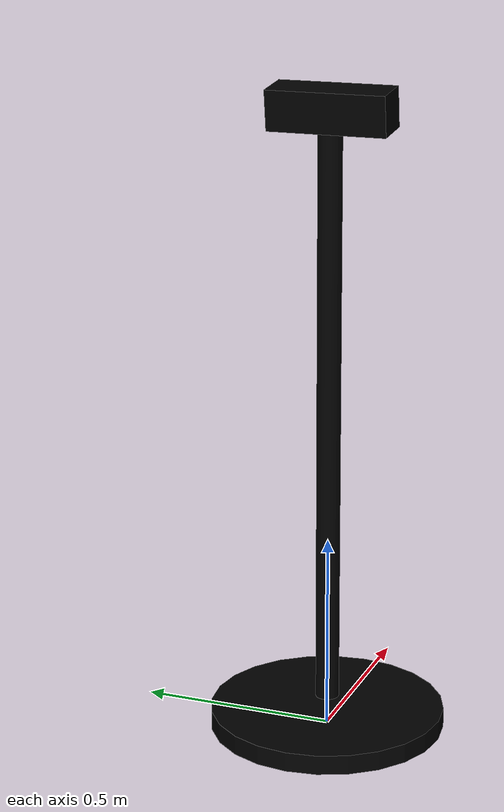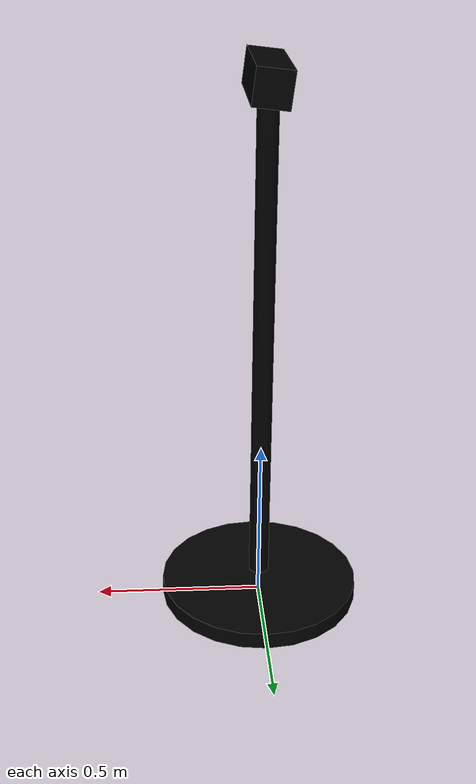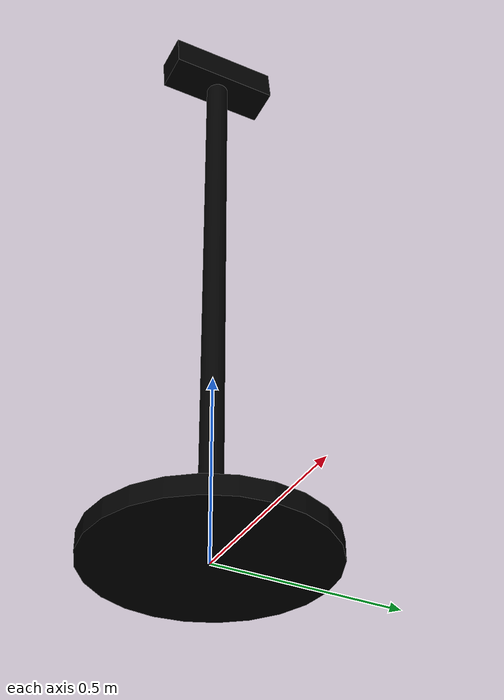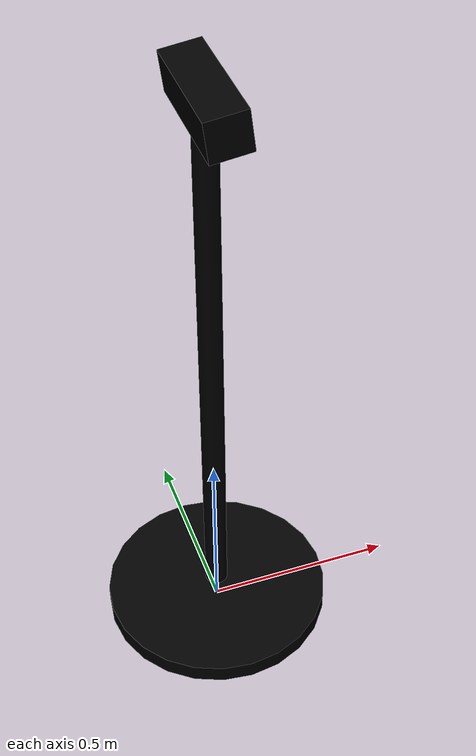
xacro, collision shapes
<?xml version="1.0" ?>

<robot name="kinect_stand" xmlns:xacro="http://www.ros.org/wiki/xacro">
    <xacro:property name="PI" value="3.1415926535897931"/>
    <xacro:arg name="gazebo" default="false"/>

    <!-- Stand URDF -->
    <xacro:include filename="$(find kinect_description)/urdf/stand/stand.urdf.xacro">
        <xacro:arg name="gazebo" value="${gazebo}"/>
    </xacro:include>

    <!-- Kinect URDF -->
    <xacro:include filename="$(find kinect_description)/urdf/kinect/kinect.xacro">
        <xacro:arg name="gazebo" value="${gazebo}"/>
    </xacro:include>
    <xacro:sensor_kinect prefix="/"
                         name="kinect"
                         parent="sensor_link"
                         cam_px="0.0"
                         cam_py="0.015"
                         cam_pz="0.0"
                         cam_or="0.0"
                         cam_op="${7*PI/180}"
                         cam_oy="0.0"/>

</robot>

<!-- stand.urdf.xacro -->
<robot name="stand" xmlns:xacro="http://www.ros.org/wiki/xacro">
    <xacro:arg name="gazebo" default="false"/>
    <xacro:if value="$(arg gazebo)">
        <!-- Gazebo Tags -->
        <xacro:include filename="$(find kinect_description)/urdf/stand/stand.gazebo.xacro"/>
    </xacro:if>
    <xacro:include filename="$(find kinect_description)/urdf/stand/properties.xacro"/>
    <xacro:include filename="$(find kinect_description)/urdf/stand/materials.xacro"/>
    <xacro:include filename="$(find kinect_description)/urdf/stand/macros.xacro"/>

    <link name="footprint"/>

    <joint name="base_joint" type="fixed">
        <parent link="footprint"/>
        <child link="foot"/>
    </joint>

    <link name="foot">
        <visual>
            <origin xyz="0 0 ${footHeight/2}" rpy="0 0 0"/>
            <geometry>
                <cylinder length="${footHeight}" radius="${footRadius}"/>
            </geometry>
            <material name="black"/>
        </visual>
        <collision>
            <origin xyz="0 0 ${footHeight/2}" rpy="0 0 0"/>
            <geometry>
                <cylinder length="${footHeight}" radius="${footRadius}"/>
            </geometry>
            <contact_coefficients mu="0" kp="1000.0" kd="1.0"/>
        </collision>
        <inertial>
            <mass value="${footMass}"/>
            <cylinder_inertia m="${footMass}"
                              r="${footRadius}" h="${footHeight}"/>
        </inertial>
    </link>

    <joint name="foot_joint" type="fixed">
        <parent link="foot"/>
        <child link="stand"/>
        <origin xyz="0 0 ${footHeight}" rpy="0 0 0"/>
    </joint>

    <link name="stand">
        <visual>
            <origin xyz="0 0 ${standHeight/2}" rpy="0 0 0"/>
            <geometry>
                <cylinder length="${standHeight}" radius="${standRadius}"/>
            </geometry>
            <material name="black"/>
        </visual>
        <collision>
            <origin xyz="0 0 ${footHeight/2+standHeight/2}" rpy="0 0 0"/>
            <geometry>
                <cylinder length="${standHeight}" radius="${standRadius}"/>
            </geometry>
            <contact_coefficients mu="0" kp="1000.0" kd="1.0"/>
        </collision>
        <inertial>
            <mass value="${standMass}"/>
            <cylinder_inertia m="${standMass}"
                              r="${standRadius}" h="${standHeight}"/>
        </inertial>
    </link>

    <joint name="sensor_joint" type="fixed">
        <parent link="stand"/>
        <child link="sensor_link"/>
        <origin xyz="0 0 ${footHeight+standHeight}" rpy="0 0 ${PI}"/>
    </joint>

    <link name="sensor_link"/>
</robot>

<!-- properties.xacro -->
<robot name="mybot" xmlns:xacro="http://www.ros.org/wiki/xacro">
    <xacro:property name="PI" value="3.1415926535897931"/>

    <xacro:property name="footRadius" value="0.3"/>
    <xacro:property name="footHeight" value="0.05"/>
    <xacro:property name="footMass" value="5.0"/>

    <xacro:property name="standRadius" value="0.03"/>
    <xacro:property name="standHeight" value="1.5"/>
    <xacro:property name="standMass" value="0.5"/>
</robot>

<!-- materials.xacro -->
<robot name="mybot" xmlns:xacro="http://www.ros.org/wiki/xacro">
    <material name="black">
        <color rgba="0.0 0.0 0.0 1.0"/>
    </material>
</robot>

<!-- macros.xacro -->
<robot name="mybot" xmlns:xacro="http://www.ros.org/wiki/xacro">
    <macro name="cylinder_inertia" params="m r h">
        <inertia  ixx="${m*(3*r*r+h*h)/12}" ixy = "0" ixz = "0"
                  iyy="${m*(3*r*r+h*h)/12}" iyz = "0"
                  izz="${m*r*r/2}"
        />
    </macro>
</robot>

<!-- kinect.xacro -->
<robot name="kinect_sensor" xmlns:xacro="http://www.ros.org/wiki/xacro">
    <xacro:macro name="sensor_kinect" params="prefix name parent cam_px cam_py cam_pz cam_or cam_op cam_oy">
        <!-- Kinect sensor URDF part, cf. https://github.com/turtlebot/turtlebot
        and there turtlebot_description/urdf/sensors/kinect.xacro -->
        <joint name="${name}_rgb_joint" type="fixed">
            <parent link="${parent}"/>
            <child link="${name}_rgb_frame"/>
            <origin xyz="${cam_px} ${cam_py} ${cam_pz}" rpy="${cam_or} ${cam_op} ${cam_oy}"/>
        </joint>

        <link name="${name}_rgb_frame"/>

        <joint name="${name}_rgb_optical_joint" type="fixed">
            <parent link="${name}_rgb_frame"/>
            <child link="${name}_rgb_optical_frame"/>
            <origin xyz="0 0 0" rpy="-1.57 0 -1.57"/>
        </joint>

        <link name="${name}_rgb_optical_frame"/>

        <joint name="${name}_joint" type="fixed">
            <parent link="${name}_rgb_frame"/>
            <child link="${name}_link"/>
            <origin xyz="0 -0.0125 -0.016" rpy="0 0 0"/>
        </joint>

        <link name="${name}_link">
            <visual>
                <geometry>
                    <mesh filename="package://kinect_description/meshes/sensors/kinect.dae"/>
                </geometry>
                <origin xyz="0 0 0" rpy="0 0 1.57"/>
                <material name="black"/>
            </visual>

            <collision>
                <geometry>
                    <box size=".1 .3 .1"/>
                </geometry>
                <contact_coefficients mu="0" kp="1000.0" kd="1.0"/>
            </collision>

            <inertial>
                <mass value="8.1"/>
                <inertia ixx="0.0675" ixy="0.0" ixz="0.0"
                         iyy="0.0135" iyz="0.0"
                         izz="0.0675"/>
            </inertial>
        </link>

        <joint name="${name}_depth_joint" type="fixed">
            <parent link="${name}_rgb_frame"/>
            <child link="${name}_depth_frame"/>
            <origin xyz="0 -0.025 0" rpy="0 0 0"/>
        </joint>

        <link name="${name}_depth_frame"/>

        <joint name="${name}_depth_optical_joint" type="fixed">
            <parent link="${name}_depth_frame"/>
            <child link="${name}_depth_optical_frame"/>
            <origin xyz="0 0 0" rpy="-1.57 0 -1.57"/>
        </joint>

        <link name="${name}_depth_optical_frame"/>

        <!-- Not sure why in a macro arguments cannot be passed to an
        associated .gazebo.xacro file... -->
        <!-- See https://github.com/turtlebot/turtlebot and there
        turtlebot_description/urdf/turtlebot_gazebo.urdf.xacro -->
        <gazebo reference="${name}_link">
            <sensor name="${name}_sensor" type="depth">
                <always_on>true</always_on>
                <update_rate>30.0</update_rate>
                <camera>
                    <horizontal_fov>${70.0*3.14/180.0}</horizontal_fov>
                    <image>
                        <width>512</width>
                        <height>424</height>
                        <format>L8</format>
                    </image>
                    <clip>
                        <near>0.1</near>
                        <far>8.0</far>
                    </clip>
                    <noise>
                        <type>gaussian</type>
                        <mean>0.0</mean>
                        <stddev>0.001</stddev>
                    </noise>
                </camera>
                <plugin name="${name}_sensor_controller"
                        filename="libgazebo_ros_openni_kinect.so">
                    <cameraName>${name}</cameraName>
                    <alwaysOn>true</alwaysOn>
                    <updateRate>30.0</updateRate>
                    <imageTopicName>sd/image_ir_rect</imageTopicName>
                    <depthImageTopicName>sd/image_depth_rect</depthImageTopicName>
                    <pointCloudTopicName>sd/points</pointCloudTopicName>
                    <cameraInfoTopicName>sd/camera_info</cameraInfoTopicName>
                    <frameName>${name}_depth_optical_frame</frameName>
                    <pointCloudCutoff>0.5</pointCloudCutoff>
                    <pointCloudCutoffMax>4.5</pointCloudCutoffMax>
                    <baseline>0.1</baseline>
                    <distortionK1>0.0</distortionK1>
                    <distortionK2>0.0</distortionK2>
                    <distortionK3>0.0</distortionK3>
                    <distortionT1>0.0</distortionT1>
                    <distortionT2>0.0</distortionT2>
                    <robotNamespace>${prefix}</robotNamespace>
                </plugin>
            </sensor>
        </gazebo>
        <gazebo reference="${name}_link">
            <sensor name="${name}_camera" type="camera">
                <always_on>true</always_on>
                <update_rate>30.0</update_rate>
                <camera name="${name}_camera">
                    <horizontal_fov>${70.0*3.14/180.0}</horizontal_fov>
                    <image>
                        <width>1920</width>
                        <height>1080</height>
                        <format>R8G8B8</format>
                    </image>
                    <clip>
                        <near>0.02</near>
                        <far>10.0</far>
                    </clip>
                    <noise>
                        <type>gaussian</type>
                        <mean>0.0</mean>
                        <stddev>0.007</stddev>
                    </noise>
                </camera>
                <plugin name="${name}_camera_controller"
                        filename="libgazebo_ros_camera.so">
                    <alwaysOn>true</alwaysOn>
                    <update_rate>30.0</update_rate>
                    <cameraName>${name}</cameraName>
                    <imageTopicName>hd/image_color_rect</imageTopicName>
                    <cameraInfoTopicName>hd/camera_info</cameraInfoTopicName>
                    <frameName>${name}_rgb_optical_frame</frameName>
                    <baseline>0.1</baseline>
                    <distortionK1>0.0</distortionK1>
                    <distortionK2>0.0</distortionK2>
                    <distortionK3>0.0</distortionK3>
                    <distortionT1>0.0</distortionT1>
                    <distortionT2>0.0</distortionT2>
                    <robotNamespace>${prefix}</robotNamespace>
                </plugin>
            </sensor>
        </gazebo>
    </xacro:macro>
</robot>
